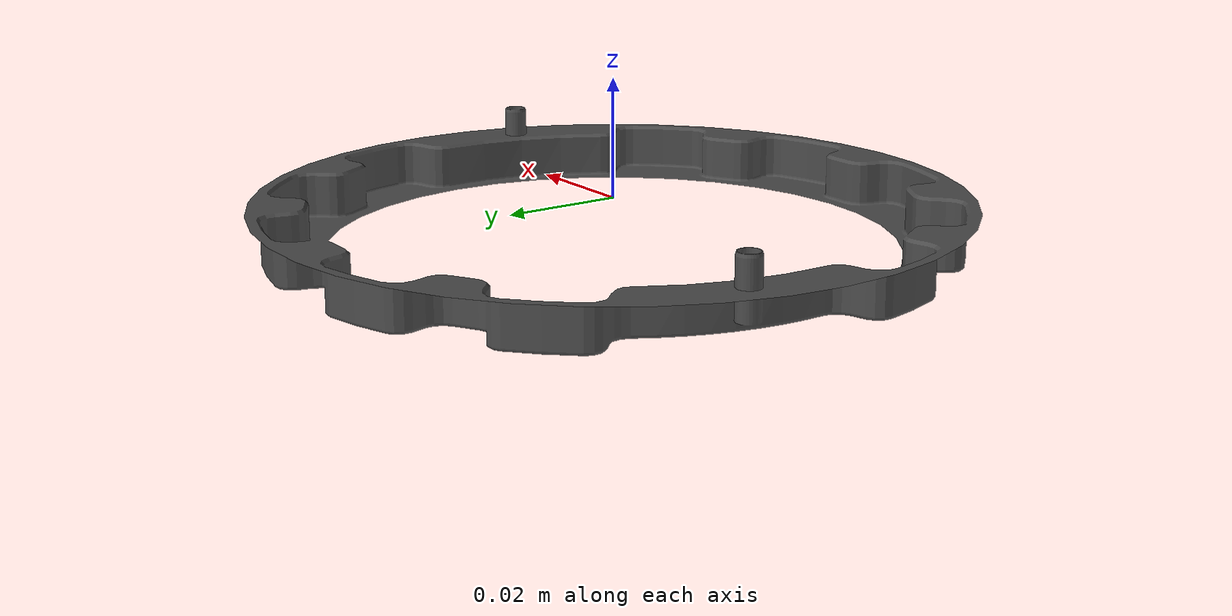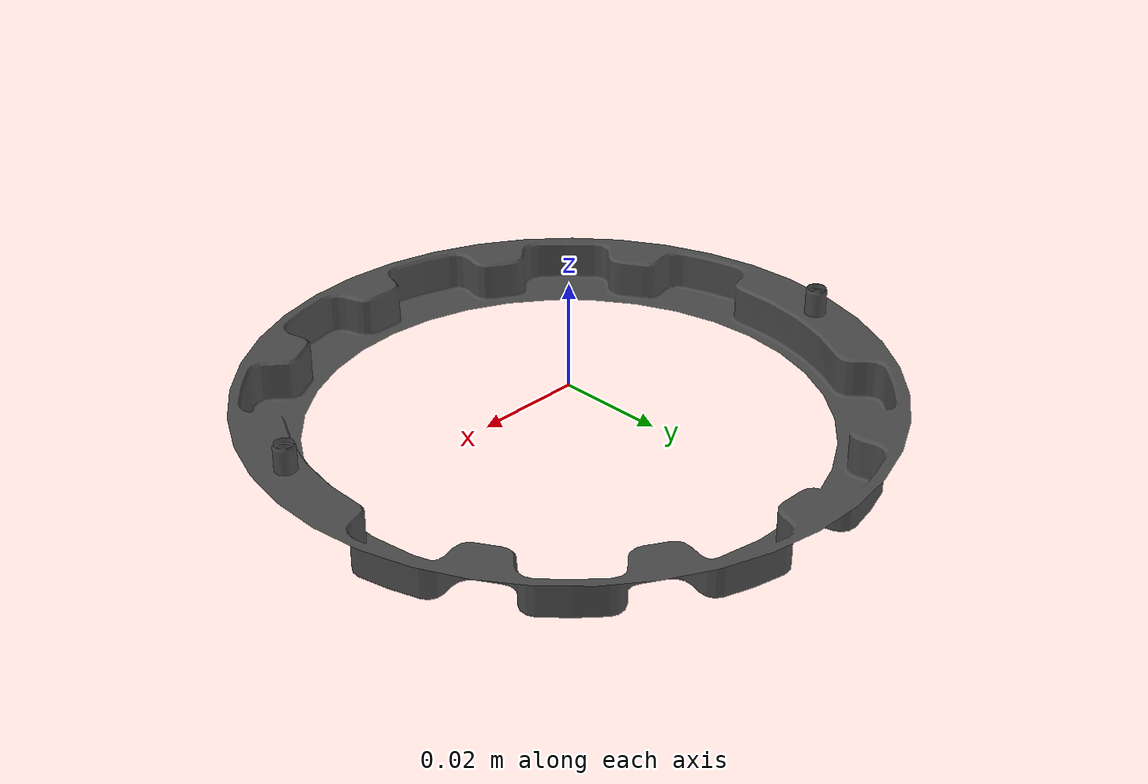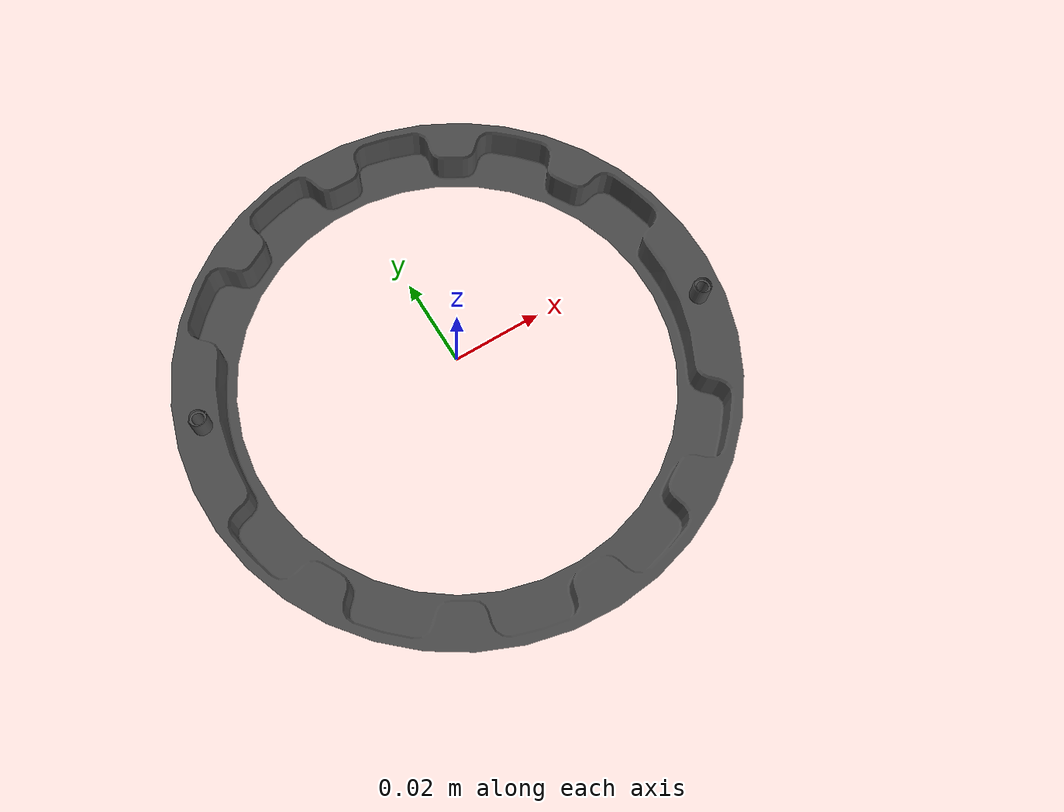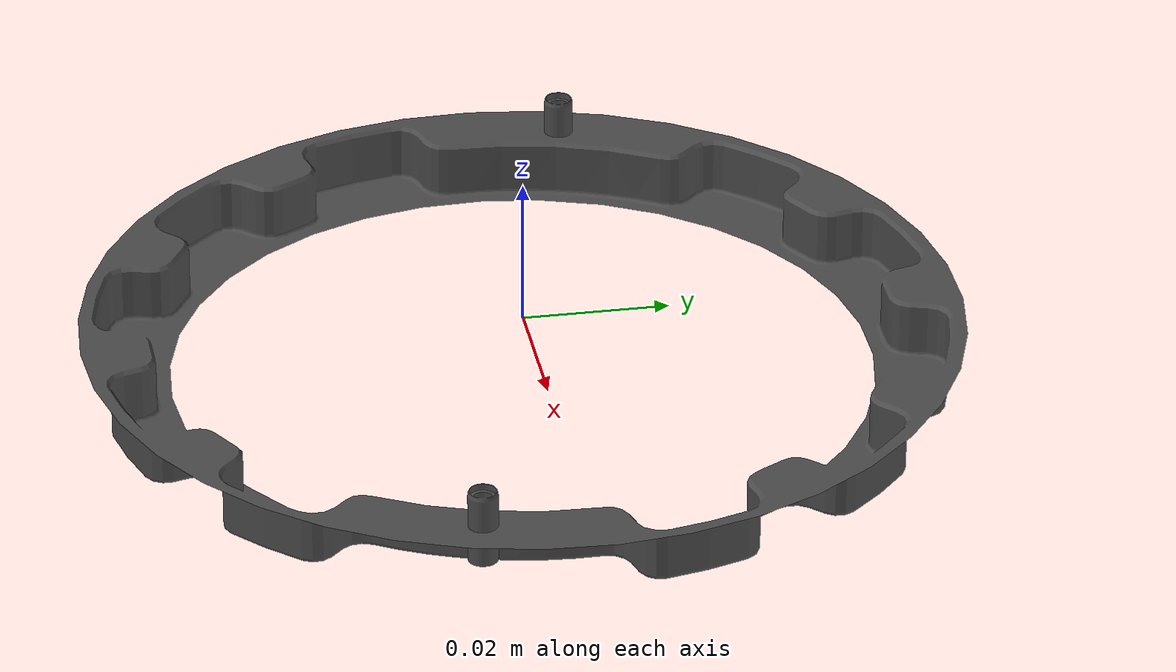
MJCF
<mujoco model="pelvis_2_link">
  <default>
    <default class="visual">
      <geom group="2" type="mesh" contype="0" conaffinity="0"/>
    </default>
    <default class="collision">
      <geom group="3" type="mesh"/>
    </default>
  </default>
  <asset>
    <material name="mtl_m4" specular="0.20000000000000004" shininess="1.0" rgba="0.29803922 0.29803922 0.29803922 1.0"/>
    <mesh file="pelvis_2_link.obj"/>
  </asset>
  <worldbody>
    <body name="pelvis_2_link">
      <geom material="mtl_m4" mesh="pelvis_2_link" class="visual"/>
      <geom mesh="pelvis_2_link" class="collision"/>
    </body>
  </worldbody>
</mujoco>
